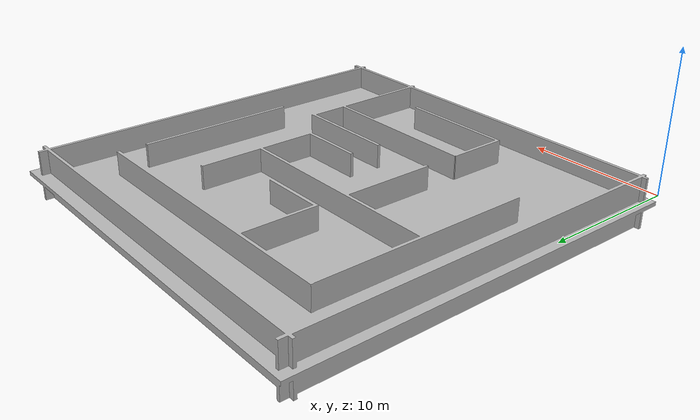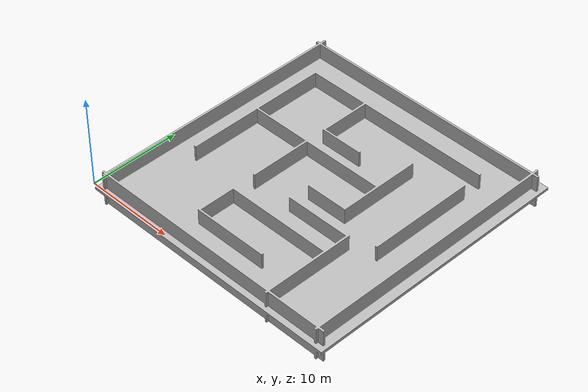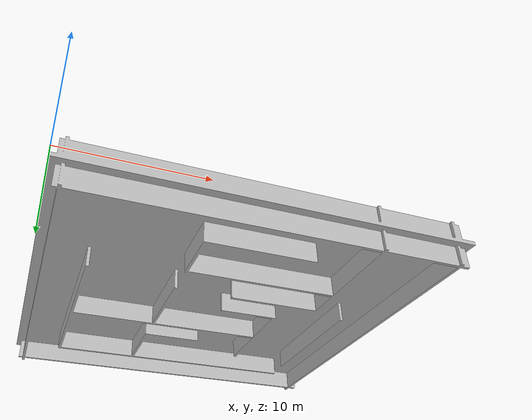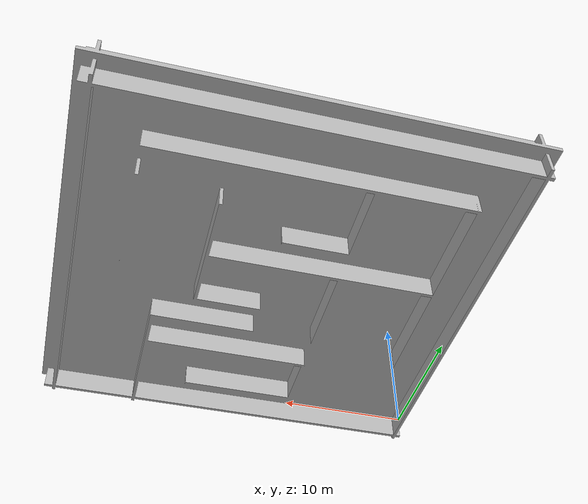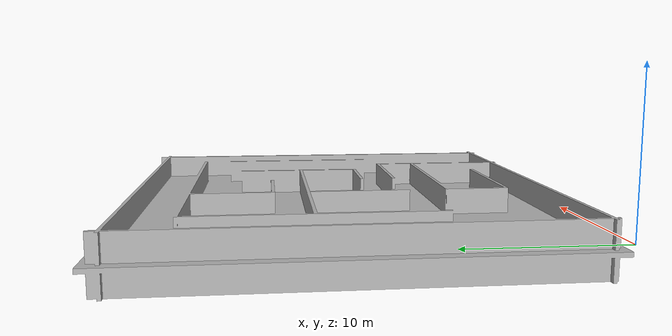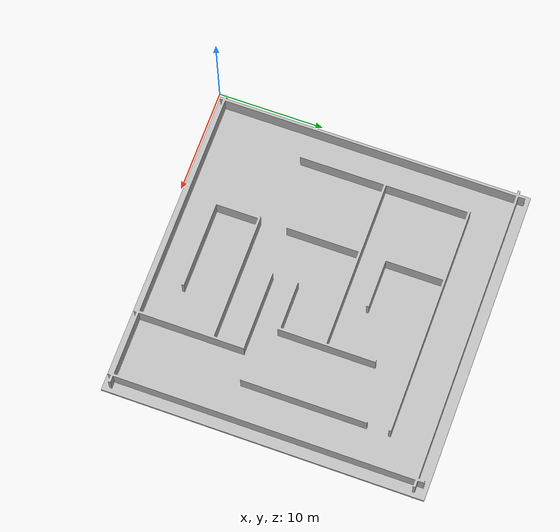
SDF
<?xml version='1.0'?>
<sdf version='1.6'>
  <model name='maze'>
      <link name='link_0'>
        <inertial>
          <mass>15</mass>
          <inertia>
            <ixx>1</ixx>
            <ixy>1</ixy>
            <ixz>1</ixz>
            <iyy>1</iyy>
            <iyz>1</iyz>
            <izz>1</izz>
          </inertia>
        </inertial>
        <self_collide>1</self_collide>
        <enable_wind>0</enable_wind>
        <kinematic>0</kinematic>
        <pose frame=''>0 0 0 0.785 0 0</pose>
        <visual name='visual'>
          <pose frame=''>0 0 0 0.785 0 0</pose>
          <geometry>
            <mesh>
              <uri>model://maze/meshes/labirinto.obj</uri>
              <scale>1 1 1</scale>
            </mesh>
          </geometry>
          <transparency>0</transparency>
          <cast_shadows>1</cast_shadows>
        </visual>
        <collision name='collision'>
          <laser_retro>0</laser_retro>
          <max_contacts>10</max_contacts>
          <pose frame=''>0 0 0 0.785 0 0</pose>
          <geometry>
            <mesh>
              <uri>model://maze/meshes/labirinto.obj</uri>
              <scale>1 1 1</scale>
            </mesh>
          </geometry>
          <surface>
            <friction>
              <ode>
                <mu>1</mu>
                <mu2>1</mu2>
                <fdir1>0 0 0</fdir1>
                <slip1>0</slip1>
                <slip2>0</slip2>
              </ode>
              <torsional>
                <coefficient>1</coefficient>
                <patch_radius>100</patch_radius>
                <surface_radius>100</surface_radius>
                <use_patch_radius>1</use_patch_radius>
                <ode>
                  <slip>0</slip>
                </ode>
              </torsional>
            </friction>
            <bounce>
              <restitution_coefficient>0</restitution_coefficient>
              <threshold>1e+06</threshold>
            </bounce>
            <contact>
              <collide_without_contact>0</collide_without_contact>
              <collide_without_contact_bitmask>1</collide_without_contact_bitmask>
              <collide_bitmask>1</collide_bitmask>
              <ode>
                <soft_cfm>0</soft_cfm>
                <soft_erp>0.2</soft_erp>
                <kp>1e+13</kp>
                <kd>1</kd>
                <max_vel>0.01</max_vel>
                <min_depth>0</min_depth>
              </ode>
              <bullet>
                <split_impulse>1</split_impulse>
                <split_impulse_penetration_threshold>-0.01</split_impulse_penetration_threshold>
                <soft_cfm>0</soft_cfm>
                <soft_erp>0.2</soft_erp>
                <kp>1e+13</kp>
                <kd>1</kd>
              </bullet>
            </contact>
          </surface>
        </collision>
      </link>
    <static>1</static>
  </model>
</sdf>
